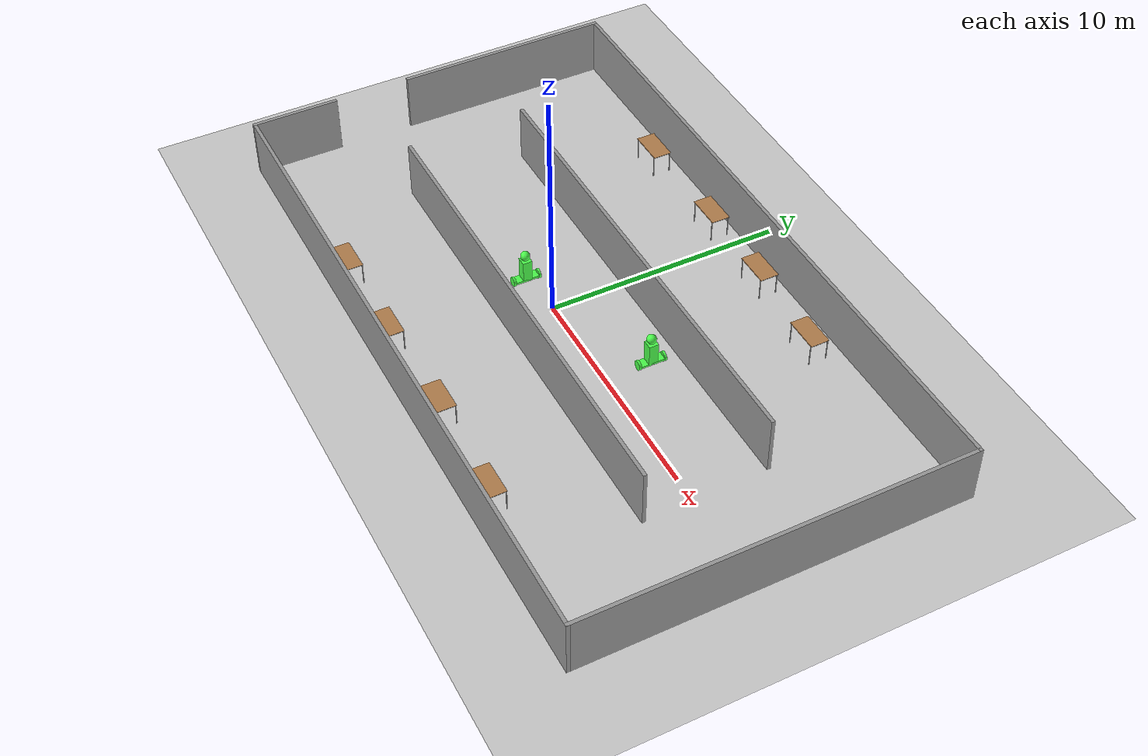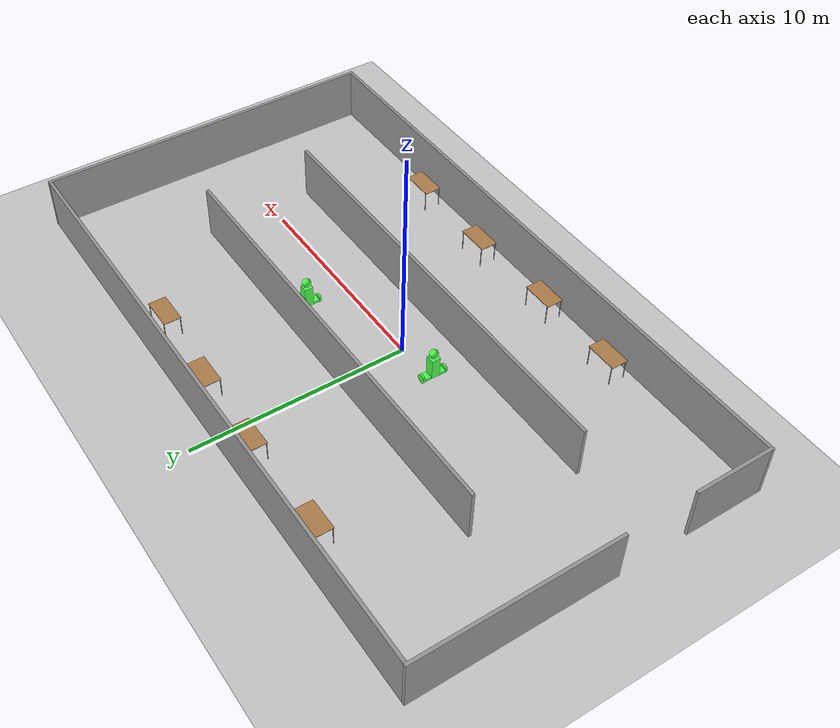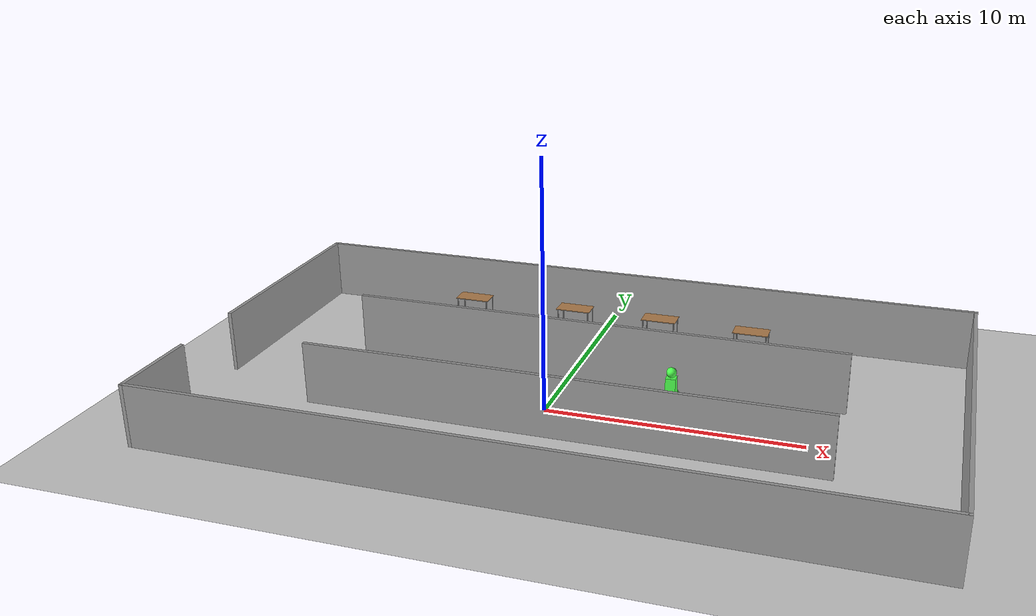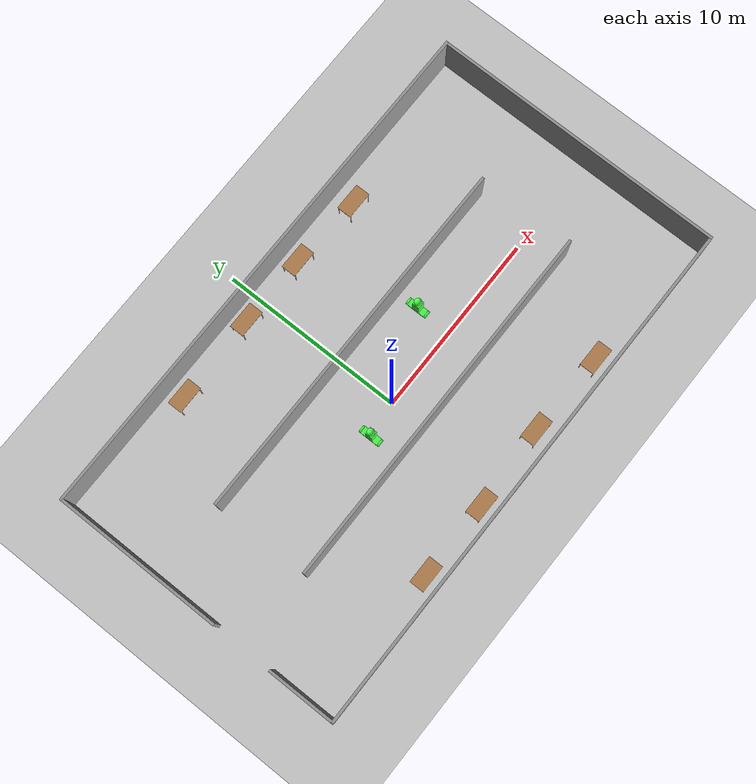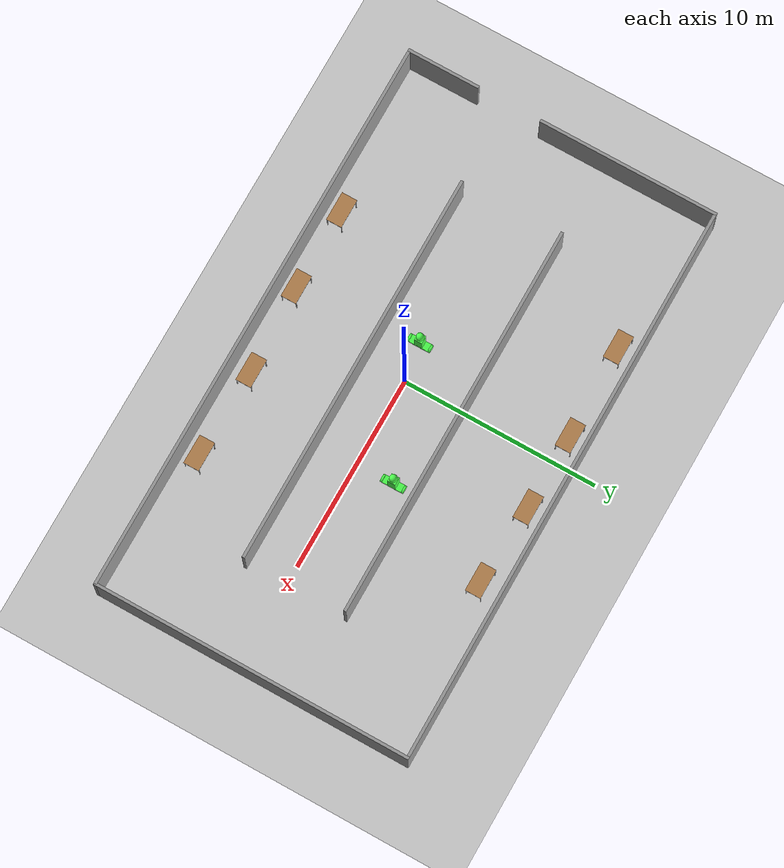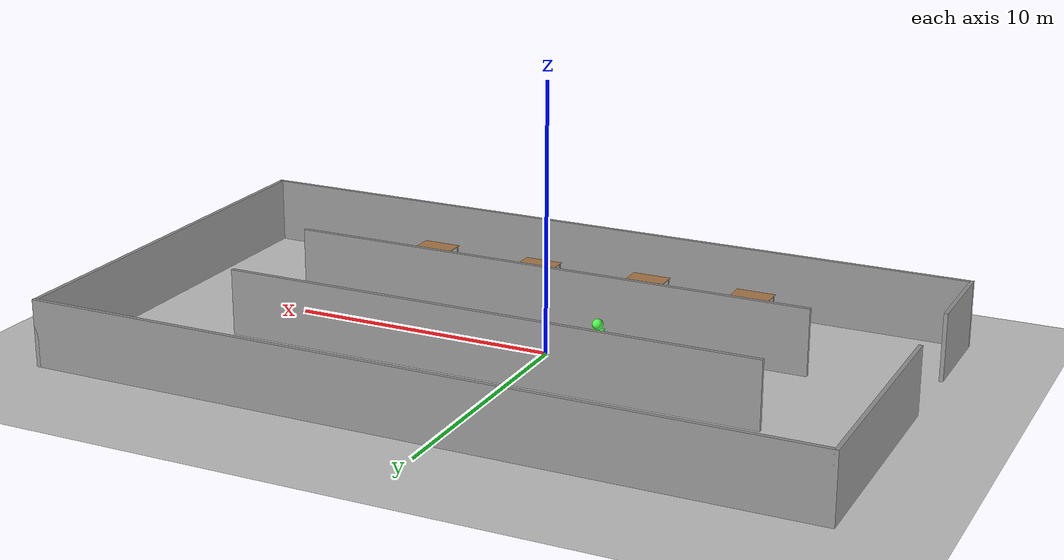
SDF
<sdf version="1.7">
 <world name="default">
  <light name="sun" type="directional">
   <pose>0 0 10 0 -0 0</pose>
   <diffuse>0.8 0.8 0.8 1</diffuse>
   <specular>0.2 0.2 0.2 1</specular>
   <attenuation>
    <range>1000</range>
    <constant>0.9</constant>
    <linear>0.01</linear>
    <quadratic>0.001</quadratic>
   </attenuation>
   <direction>-0.5 0.1 -0.9</direction>
   <spot><inner_angle>0</inner_angle><outer_angle>0</outer_angle><falloff>0</falloff></spot>
  </light>
  <model name="ground_plane">
   <static>1</static>
   <link name="link">
    <collision name="collision">
     <geometry><plane><normal>0 0 1</normal><size>100 100</size></plane></geometry>
     <surface>
      <contact><collide_bitmask>65535</collide_bitmask></contact>
      <friction><ode><mu>100</mu><mu2>50</mu2></ode></friction>
     </surface>
    </collision>
    <visual name="visual">
     <cast_shadows>0</cast_shadows>
     <geometry><plane><normal>0 0 1</normal><size>100 100</size></plane></geometry>
     <material>
      <script><uri>file://media/materials/scripts/gazebo.material</uri><name>Gazebo/Grey</name></script>
     </material>
    </visual>
   </link>
  </model>
  <gravity>0 0 -9.8</gravity>
  <magnetic_field>6e-06 2.3e-05 -4.2e-05</magnetic_field>
  <atmosphere type="adiabatic"/>
  <physics type="ode">
   <max_step_size>0.001</max_step_size>
   <real_time_factor>1</real_time_factor>
   <real_time_update_rate>1000</real_time_update_rate>
  </physics>
  <scene><ambient>0.4 0.4 0.4 1</ambient><background>0.7 0.7 0.7 1</background><shadows>1</shadows></scene>
  <spherical_coordinates>
   <surface_model>EARTH_WGS84</surface_model>
   <latitude_deg>0</latitude_deg>
   <longitude_deg>0</longitude_deg>
   <elevation>0</elevation>
   <heading_deg>0</heading_deg>
  </spherical_coordinates>
  <model name="office">
   <pose>1.065 0.81 0 0 -0 0</pose>
   <link name="Wall_11">
    <collision name="Wall_11_Collision">
     <geometry><box><size>20.25 0.15 2.5</size></box></geometry>
     <pose>0 0 1.25 0 -0 0</pose>
    </collision>
    <visual name="Wall_11_Visual">
     <pose>0 0 1.25 0 -0 0</pose>
     <geometry><box><size>20.25 0.15 2.5</size></box></geometry>
     <material>
      <script><uri>file://media/materials/scripts/gazebo.material</uri><name>Gazebo/Grey</name></script>
      <ambient>1 1 1 1</ambient>
     </material>
     <meta><layer>0</layer></meta>
    </visual>
    <pose>-0.095 2.35 0 0 -0 0</pose>
   </link>
   <link name="Wall_13">
    <collision name="Wall_13_Collision">
     <geometry><box><size>20.25 0.15 2.5</size></box></geometry>
     <pose>0 0 1.25 0 -0 0</pose>
    </collision>
    <visual name="Wall_13_Visual">
     <pose>0 0 1.25 0 -0 0</pose>
     <geometry><box><size>20.25 0.15 2.5</size></box></geometry>
     <material>
      <script><uri>file://media/materials/scripts/gazebo.material</uri><name>Gazebo/Grey</name></script>
      <ambient>1 1 1 1</ambient>
     </material>
     <meta><layer>0</layer></meta>
    </visual>
    <pose>0.005 -2.85 0 0 -0 0</pose>
   </link>
   <link name="Wall_2">
    <collision name="Wall_2_Collision">
     <geometry><box><size>9.25 0.15 2.5</size></box></geometry>
     <pose>0 0 1.25 0 -0 0</pose>
    </collision>
    <visual name="Wall_2_Visual">
     <pose>0 0 1.25 0 -0 0</pose>
     <geometry><box><size>9.25 0.15 2.5</size></box></geometry>
     <material>
      <script><uri>file://media/materials/scripts/gazebo.material</uri><name>Gazebo/Grey</name></script>
      <ambient>1 1 1 1</ambient>
     </material>
     <meta><layer>0</layer></meta>
    </visual>
    <pose>-14.425 3.5 0 0 -0 1.5708</pose>
   </link>
   <link name="Wall_3">
    <collision name="Wall_3_Collision">
     <geometry><box><size>29 0.15 2.5</size></box></geometry>
     <pose>0 0 1.25 0 -0 0</pose>
    </collision>
    <visual name="Wall_3_Visual">
     <pose>0 0 1.25 0 -0 0</pose>
     <geometry><box><size>29 0.15 2.5</size></box></geometry>
     <material>
      <script><uri>file://media/materials/scripts/gazebo.material</uri><name>Gazebo/Grey</name></script>
      <ambient>1 1 1 1</ambient>
     </material>
     <meta><layer>0</layer></meta>
    </visual>
    <pose>0 8.05 0 0 -0 0</pose>
   </link>
   <link name="Wall_4">
    <collision name="Wall_4_Collision">
     <geometry><box><size>16.25 0.15 2.5</size></box></geometry>
     <pose>0 0 1.25 0 -0 0</pose>
    </collision>
    <visual name="Wall_4_Visual">
     <pose>0 0 1.25 0 -0 0</pose>
     <geometry><box><size>16.25 0.15 2.5</size></box></geometry>
     <material>
      <script><uri>file://media/materials/scripts/gazebo.material</uri><name>Gazebo/Grey</name></script>
      <ambient>1 1 1 1</ambient>
     </material>
     <meta><layer>0</layer></meta>
    </visual>
    <pose>14.425 -0 0 0 -0 -1.5708</pose>
   </link>
   <link name="Wall_5">
    <collision name="Wall_5_Collision">
     <geometry><box><size>29 0.15 2.5</size></box></geometry>
     <pose>0 0 1.25 0 -0 0</pose>
    </collision>
    <visual name="Wall_5_Visual">
     <pose>0 0 1.25 0 -0 0</pose>
     <geometry><box><size>29 0.15 2.5</size></box></geometry>
     <material>
      <script><uri>file://media/materials/scripts/gazebo.material</uri><name>Gazebo/Grey</name></script>
      <ambient>1 1 1 1</ambient>
     </material>
     <meta><layer>0</layer></meta>
    </visual>
    <pose>0 -8.05 0 0 -0 3.14159</pose>
   </link>
   <link name="Wall_6">
    <collision name="Wall_6_Collision">
     <geometry><box><size>3.75 0.15 2.5</size></box></geometry>
     <pose>0 0 1.25 0 -0 0</pose>
    </collision>
    <visual name="Wall_6_Visual">
     <pose>0 0 1.25 0 -0 0</pose>
     <geometry><box><size>3.75 0.15 2.5</size></box></geometry>
     <material>
      <script><uri>file://media/materials/scripts/gazebo.material</uri><name>Gazebo/Grey</name></script>
      <ambient>1 1 1 1</ambient>
     </material>
     <meta><layer>0</layer></meta>
    </visual>
    <pose>-14.425 -6.25 0 0 -0 1.5708</pose>
   </link>
   <static>1</static>
  </model>
  <model name="table">
   <static>1</static>
   <link name="link">
    <collision name="surface">
     <pose>0 0 1 0 -0 0</pose>
     <geometry><box><size>1.5 0.8 0.03</size></box></geometry>
     <surface><friction><ode><mu>0.6</mu><mu2>0.6</mu2></ode></friction></surface>
    </collision>
    <visual name="visual1">
     <pose>0 0 1 0 -0 0</pose>
     <geometry><box><size>1.5 0.8 0.03</size></box></geometry>
     <material>
      <script><uri>file://media/materials/scripts/gazebo.material</uri><name>Gazebo/Wood</name></script>
     </material>
    </visual>
    <collision name="front_left_leg">
     <pose>0.68 0.38 0.5 0 -0 0</pose>
     <geometry><cylinder><radius>0.02</radius><length>1</length></cylinder></geometry>
    </collision>
    <visual name="front_left_leg">
     <pose>0.68 0.38 0.5 0 -0 0</pose>
     <geometry><cylinder><radius>0.02</radius><length>1</length></cylinder></geometry>
     <material>
      <script><uri>file://media/materials/scripts/gazebo.material</uri><name>Gazebo/Grey</name></script>
     </material>
    </visual>
    <collision name="front_right_leg">
     <pose>0.68 -0.38 0.5 0 -0 0</pose>
     <geometry><cylinder><radius>0.02</radius><length>1</length></cylinder></geometry>
    </collision>
    <visual name="front_right_leg">
     <pose>0.68 -0.38 0.5 0 -0 0</pose>
     <geometry><cylinder><radius>0.02</radius><length>1</length></cylinder></geometry>
     <material>
      <script><uri>file://media/materials/scripts/gazebo.material</uri><name>Gazebo/Grey</name></script>
     </material>
    </visual>
    <collision name="back_right_leg">
     <pose>-0.68 -0.38 0.5 0 -0 0</pose>
     <geometry><cylinder><radius>0.02</radius><length>1</length></cylinder></geometry>
    </collision>
    <visual name="back_right_leg">
     <pose>-0.68 -0.38 0.5 0 -0 0</pose>
     <geometry><cylinder><radius>0.02</radius><length>1</length></cylinder></geometry>
     <material>
      <script><uri>file://media/materials/scripts/gazebo.material</uri><name>Gazebo/Grey</name></script>
     </material>
    </visual>
    <collision name="back_left_leg">
     <pose>-0.68 0.38 0.5 0 -0 0</pose>
     <geometry><cylinder><radius>0.02</radius><length>1</length></cylinder></geometry>
    </collision>
    <visual name="back_left_leg">
     <pose>-0.68 0.38 0.5 0 -0 0</pose>
     <geometry><cylinder><radius>0.02</radius><length>1</length></cylinder></geometry>
     <material>
      <script><uri>file://media/materials/scripts/gazebo.material</uri><name>Gazebo/Grey</name></script>
     </material>
    </visual>
   </link>
   <pose>-5.48269 -6.41926 0 0 -0 0</pose>
  </model>
  <model name="table_0">
   <static>1</static>
   <link name="link">
    <collision name="surface">
     <pose>0 0 1 0 -0 0</pose>
     <geometry><box><size>1.5 0.8 0.03</size></box></geometry>
     <surface><friction><ode><mu>0.6</mu><mu2>0.6</mu2></ode></friction></surface>
    </collision>
    <visual name="visual1">
     <pose>0 0 1 0 -0 0</pose>
     <geometry><box><size>1.5 0.8 0.03</size></box></geometry>
     <material>
      <script><uri>file://media/materials/scripts/gazebo.material</uri><name>Gazebo/Wood</name></script>
     </material>
    </visual>
    <collision name="front_left_leg">
     <pose>0.68 0.38 0.5 0 -0 0</pose>
     <geometry><cylinder><radius>0.02</radius><length>1</length></cylinder></geometry>
    </collision>
    <visual name="front_left_leg">
     <pose>0.68 0.38 0.5 0 -0 0</pose>
     <geometry><cylinder><radius>0.02</radius><length>1</length></cylinder></geometry>
     <material>
      <script><uri>file://media/materials/scripts/gazebo.material</uri><name>Gazebo/Grey</name></script>
     </material>
    </visual>
    <collision name="front_right_leg">
     <pose>0.68 -0.38 0.5 0 -0 0</pose>
     <geometry><cylinder><radius>0.02</radius><length>1</length></cylinder></geometry>
    </collision>
    <visual name="front_right_leg">
     <pose>0.68 -0.38 0.5 0 -0 0</pose>
     <geometry><cylinder><radius>0.02</radius><length>1</length></cylinder></geometry>
     <material>
      <script><uri>file://media/materials/scripts/gazebo.material</uri><name>Gazebo/Grey</name></script>
     </material>
    </visual>
    <collision name="back_right_leg">
     <pose>-0.68 -0.38 0.5 0 -0 0</pose>
     <geometry><cylinder><radius>0.02</radius><length>1</length></cylinder></geometry>
    </collision>
    <visual name="back_right_leg">
     <pose>-0.68 -0.38 0.5 0 -0 0</pose>
     <geometry><cylinder><radius>0.02</radius><length>1</length></cylinder></geometry>
     <material>
      <script><uri>file://media/materials/scripts/gazebo.material</uri><name>Gazebo/Grey</name></script>
     </material>
    </visual>
    <collision name="back_left_leg">
     <pose>-0.68 0.38 0.5 0 -0 0</pose>
     <geometry><cylinder><radius>0.02</radius><length>1</length></cylinder></geometry>
    </collision>
    <visual name="back_left_leg">
     <pose>-0.68 0.38 0.5 0 -0 0</pose>
     <geometry><cylinder><radius>0.02</radius><length>1</length></cylinder></geometry>
     <material>
      <script><uri>file://media/materials/scripts/gazebo.material</uri><name>Gazebo/Grey</name></script>
     </material>
    </visual>
   </link>
   <pose>-1.28457 -6.44201 0 0 -0 0</pose>
  </model>
  <model name="table_1">
   <static>1</static>
   <link name="link">
    <collision name="surface">
     <pose>0 0 1 0 -0 0</pose>
     <geometry><box><size>1.5 0.8 0.03</size></box></geometry>
     <surface><friction><ode><mu>0.6</mu><mu2>0.6</mu2></ode></friction></surface>
    </collision>
    <visual name="visual1">
     <pose>0 0 1 0 -0 0</pose>
     <geometry><box><size>1.5 0.8 0.03</size></box></geometry>
     <material>
      <script><uri>file://media/materials/scripts/gazebo.material</uri><name>Gazebo/Wood</name></script>
     </material>
    </visual>
    <collision name="front_left_leg">
     <pose>0.68 0.38 0.5 0 -0 0</pose>
     <geometry><cylinder><radius>0.02</radius><length>1</length></cylinder></geometry>
    </collision>
    <visual name="front_left_leg">
     <pose>0.68 0.38 0.5 0 -0 0</pose>
     <geometry><cylinder><radius>0.02</radius><length>1</length></cylinder></geometry>
     <material>
      <script><uri>file://media/materials/scripts/gazebo.material</uri><name>Gazebo/Grey</name></script>
     </material>
    </visual>
    <collision name="front_right_leg">
     <pose>0.68 -0.38 0.5 0 -0 0</pose>
     <geometry><cylinder><radius>0.02</radius><length>1</length></cylinder></geometry>
    </collision>
    <visual name="front_right_leg">
     <pose>0.68 -0.38 0.5 0 -0 0</pose>
     <geometry><cylinder><radius>0.02</radius><length>1</length></cylinder></geometry>
     <material>
      <script><uri>file://media/materials/scripts/gazebo.material</uri><name>Gazebo/Grey</name></script>
     </material>
    </visual>
    <collision name="back_right_leg">
     <pose>-0.68 -0.38 0.5 0 -0 0</pose>
     <geometry><cylinder><radius>0.02</radius><length>1</length></cylinder></geometry>
    </collision>
    <visual name="back_right_leg">
     <pose>-0.68 -0.38 0.5 0 -0 0</pose>
     <geometry><cylinder><radius>0.02</radius><length>1</length></cylinder></geometry>
     <material>
      <script><uri>file://media/materials/scripts/gazebo.material</uri><name>Gazebo/Grey</name></script>
     </material>
    </visual>
    <collision name="back_left_leg">
     <pose>-0.68 0.38 0.5 0 -0 0</pose>
     <geometry><cylinder><radius>0.02</radius><length>1</length></cylinder></geometry>
    </collision>
    <visual name="back_left_leg">
     <pose>-0.68 0.38 0.5 0 -0 0</pose>
     <geometry><cylinder><radius>0.02</radius><length>1</length></cylinder></geometry>
     <material>
      <script><uri>file://media/materials/scripts/gazebo.material</uri><name>Gazebo/Grey</name></script>
     </material>
    </visual>
   </link>
   <pose>3.18281 -6.2799 0 0 -0 0</pose>
  </model>
  <model name="table_2">
   <static>1</static>
   <link name="link">
    <collision name="surface">
     <pose>0 0 1 0 -0 0</pose>
     <geometry><box><size>1.5 0.8 0.03</size></box></geometry>
     <surface><friction><ode><mu>0.6</mu><mu2>0.6</mu2></ode></friction></surface>
    </collision>
    <visual name="visual1">
     <pose>0 0 1 0 -0 0</pose>
     <geometry><box><size>1.5 0.8 0.03</size></box></geometry>
     <material>
      <script><uri>file://media/materials/scripts/gazebo.material</uri><name>Gazebo/Wood</name></script>
     </material>
    </visual>
    <collision name="front_left_leg">
     <pose>0.68 0.38 0.5 0 -0 0</pose>
     <geometry><cylinder><radius>0.02</radius><length>1</length></cylinder></geometry>
    </collision>
    <visual name="front_left_leg">
     <pose>0.68 0.38 0.5 0 -0 0</pose>
     <geometry><cylinder><radius>0.02</radius><length>1</length></cylinder></geometry>
     <material>
      <script><uri>file://media/materials/scripts/gazebo.material</uri><name>Gazebo/Grey</name></script>
     </material>
    </visual>
    <collision name="front_right_leg">
     <pose>0.68 -0.38 0.5 0 -0 0</pose>
     <geometry><cylinder><radius>0.02</radius><length>1</length></cylinder></geometry>
    </collision>
    <visual name="front_right_leg">
     <pose>0.68 -0.38 0.5 0 -0 0</pose>
     <geometry><cylinder><radius>0.02</radius><length>1</length></cylinder></geometry>
     <material>
      <script><uri>file://media/materials/scripts/gazebo.material</uri><name>Gazebo/Grey</name></script>
     </material>
    </visual>
    <collision name="back_right_leg">
     <pose>-0.68 -0.38 0.5 0 -0 0</pose>
     <geometry><cylinder><radius>0.02</radius><length>1</length></cylinder></geometry>
    </collision>
    <visual name="back_right_leg">
     <pose>-0.68 -0.38 0.5 0 -0 0</pose>
     <geometry><cylinder><radius>0.02</radius><length>1</length></cylinder></geometry>
     <material>
      <script><uri>file://media/materials/scripts/gazebo.material</uri><name>Gazebo/Grey</name></script>
     </material>
    </visual>
    <collision name="back_left_leg">
     <pose>-0.68 0.38 0.5 0 -0 0</pose>
     <geometry><cylinder><radius>0.02</radius><length>1</length></cylinder></geometry>
    </collision>
    <visual name="back_left_leg">
     <pose>-0.68 0.38 0.5 0 -0 0</pose>
     <geometry><cylinder><radius>0.02</radius><length>1</length></cylinder></geometry>
     <material>
      <script><uri>file://media/materials/scripts/gazebo.material</uri><name>Gazebo/Grey</name></script>
     </material>
    </visual>
   </link>
   <pose>7.73698 -6.40535 0 0 -0 0</pose>
  </model>
  <model name="table_3">
   <static>1</static>
   <link name="link">
    <collision name="surface">
     <pose>0 0 1 0 -0 0</pose>
     <geometry><box><size>1.5 0.8 0.03</size></box></geometry>
     <surface><friction><ode><mu>0.6</mu><mu2>0.6</mu2></ode></friction></surface>
    </collision>
    <visual name="visual1">
     <pose>0 0 1 0 -0 0</pose>
     <geometry><box><size>1.5 0.8 0.03</size></box></geometry>
     <material>
      <script><uri>file://media/materials/scripts/gazebo.material</uri><name>Gazebo/Wood</name></script>
     </material>
    </visual>
    <collision name="front_left_leg">
     <pose>0.68 0.38 0.5 0 -0 0</pose>
     <geometry><cylinder><radius>0.02</radius><length>1</length></cylinder></geometry>
    </collision>
    <visual name="front_left_leg">
     <pose>0.68 0.38 0.5 0 -0 0</pose>
     <geometry><cylinder><radius>0.02</radius><length>1</length></cylinder></geometry>
     <material>
      <script><uri>file://media/materials/scripts/gazebo.material</uri><name>Gazebo/Grey</name></script>
     </material>
    </visual>
    <collision name="front_right_leg">
     <pose>0.68 -0.38 0.5 0 -0 0</pose>
     <geometry><cylinder><radius>0.02</radius><length>1</length></cylinder></geometry>
    </collision>
    <visual name="front_right_leg">
     <pose>0.68 -0.38 0.5 0 -0 0</pose>
     <geometry><cylinder><radius>0.02</radius><length>1</length></cylinder></geometry>
     <material>
      <script><uri>file://media/materials/scripts/gazebo.material</uri><name>Gazebo/Grey</name></script>
     </material>
    </visual>
    <collision name="back_right_leg">
     <pose>-0.68 -0.38 0.5 0 -0 0</pose>
     <geometry><cylinder><radius>0.02</radius><length>1</length></cylinder></geometry>
    </collision>
    <visual name="back_right_leg">
     <pose>-0.68 -0.38 0.5 0 -0 0</pose>
     <geometry><cylinder><radius>0.02</radius><length>1</length></cylinder></geometry>
     <material>
      <script><uri>file://media/materials/scripts/gazebo.material</uri><name>Gazebo/Grey</name></script>
     </material>
    </visual>
    <collision name="back_left_leg">
     <pose>-0.68 0.38 0.5 0 -0 0</pose>
     <geometry><cylinder><radius>0.02</radius><length>1</length></cylinder></geometry>
    </collision>
    <visual name="back_left_leg">
     <pose>-0.68 0.38 0.5 0 -0 0</pose>
     <geometry><cylinder><radius>0.02</radius><length>1</length></cylinder></geometry>
     <material>
      <script><uri>file://media/materials/scripts/gazebo.material</uri><name>Gazebo/Grey</name></script>
     </material>
    </visual>
   </link>
   <pose>-6.01718 7.89006 0 0 -0 0</pose>
  </model>
  <model name="table_4">
   <static>1</static>
   <link name="link">
    <collision name="surface">
     <pose>0 0 1 0 -0 0</pose>
     <geometry><box><size>1.5 0.8 0.03</size></box></geometry>
     <surface><friction><ode><mu>0.6</mu><mu2>0.6</mu2></ode></friction></surface>
    </collision>
    <visual name="visual1">
     <pose>0 0 1 0 -0 0</pose>
     <geometry><box><size>1.5 0.8 0.03</size></box></geometry>
     <material>
      <script><uri>file://media/materials/scripts/gazebo.material</uri><name>Gazebo/Wood</name></script>
     </material>
    </visual>
    <collision name="front_left_leg">
     <pose>0.68 0.38 0.5 0 -0 0</pose>
     <geometry><cylinder><radius>0.02</radius><length>1</length></cylinder></geometry>
    </collision>
    <visual name="front_left_leg">
     <pose>0.68 0.38 0.5 0 -0 0</pose>
     <geometry><cylinder><radius>0.02</radius><length>1</length></cylinder></geometry>
     <material>
      <script><uri>file://media/materials/scripts/gazebo.material</uri><name>Gazebo/Grey</name></script>
     </material>
    </visual>
    <collision name="front_right_leg">
     <pose>0.68 -0.38 0.5 0 -0 0</pose>
     <geometry><cylinder><radius>0.02</radius><length>1</length></cylinder></geometry>
    </collision>
    <visual name="front_right_leg">
     <pose>0.68 -0.38 0.5 0 -0 0</pose>
     <geometry><cylinder><radius>0.02</radius><length>1</length></cylinder></geometry>
     <material>
      <script><uri>file://media/materials/scripts/gazebo.material</uri><name>Gazebo/Grey</name></script>
     </material>
    </visual>
    <collision name="back_right_leg">
     <pose>-0.68 -0.38 0.5 0 -0 0</pose>
     <geometry><cylinder><radius>0.02</radius><length>1</length></cylinder></geometry>
    </collision>
    <visual name="back_right_leg">
     <pose>-0.68 -0.38 0.5 0 -0 0</pose>
     <geometry><cylinder><radius>0.02</radius><length>1</length></cylinder></geometry>
     <material>
      <script><uri>file://media/materials/scripts/gazebo.material</uri><name>Gazebo/Grey</name></script>
     </material>
    </visual>
    <collision name="back_left_leg">
     <pose>-0.68 0.38 0.5 0 -0 0</pose>
     <geometry><cylinder><radius>0.02</radius><length>1</length></cylinder></geometry>
    </collision>
    <visual name="back_left_leg">
     <pose>-0.68 0.38 0.5 0 -0 0</pose>
     <geometry><cylinder><radius>0.02</radius><length>1</length></cylinder></geometry>
     <material>
      <script><uri>file://media/materials/scripts/gazebo.material</uri><name>Gazebo/Grey</name></script>
     </material>
    </visual>
   </link>
   <pose>-1.2871 7.96784 0 0 -0 0</pose>
  </model>
  <model name="table_5">
   <static>1</static>
   <link name="link">
    <collision name="surface">
     <pose>0 0 1 0 -0 0</pose>
     <geometry><box><size>1.5 0.8 0.03</size></box></geometry>
     <surface><friction><ode><mu>0.6</mu><mu2>0.6</mu2></ode></friction></surface>
    </collision>
    <visual name="visual1">
     <pose>0 0 1 0 -0 0</pose>
     <geometry><box><size>1.5 0.8 0.03</size></box></geometry>
     <material>
      <script><uri>file://media/materials/scripts/gazebo.material</uri><name>Gazebo/Wood</name></script>
     </material>
    </visual>
    <collision name="front_left_leg">
     <pose>0.68 0.38 0.5 0 -0 0</pose>
     <geometry><cylinder><radius>0.02</radius><length>1</length></cylinder></geometry>
    </collision>
    <visual name="front_left_leg">
     <pose>0.68 0.38 0.5 0 -0 0</pose>
     <geometry><cylinder><radius>0.02</radius><length>1</length></cylinder></geometry>
     <material>
      <script><uri>file://media/materials/scripts/gazebo.material</uri><name>Gazebo/Grey</name></script>
     </material>
    </visual>
    <collision name="front_right_leg">
     <pose>0.68 -0.38 0.5 0 -0 0</pose>
     <geometry><cylinder><radius>0.02</radius><length>1</length></cylinder></geometry>
    </collision>
    <visual name="front_right_leg">
     <pose>0.68 -0.38 0.5 0 -0 0</pose>
     <geometry><cylinder><radius>0.02</radius><length>1</length></cylinder></geometry>
     <material>
      <script><uri>file://media/materials/scripts/gazebo.material</uri><name>Gazebo/Grey</name></script>
     </material>
    </visual>
    <collision name="back_right_leg">
     <pose>-0.68 -0.38 0.5 0 -0 0</pose>
     <geometry><cylinder><radius>0.02</radius><length>1</length></cylinder></geometry>
    </collision>
    <visual name="back_right_leg">
     <pose>-0.68 -0.38 0.5 0 -0 0</pose>
     <geometry><cylinder><radius>0.02</radius><length>1</length></cylinder></geometry>
     <material>
      <script><uri>file://media/materials/scripts/gazebo.material</uri><name>Gazebo/Grey</name></script>
     </material>
    </visual>
    <collision name="back_left_leg">
     <pose>-0.68 0.38 0.5 0 -0 0</pose>
     <geometry><cylinder><radius>0.02</radius><length>1</length></cylinder></geometry>
    </collision>
    <visual name="back_left_leg">
     <pose>-0.68 0.38 0.5 0 -0 0</pose>
     <geometry><cylinder><radius>0.02</radius><length>1</length></cylinder></geometry>
     <material>
      <script><uri>file://media/materials/scripts/gazebo.material</uri><name>Gazebo/Grey</name></script>
     </material>
    </visual>
   </link>
   <pose>2.58747 7.91174 0 0 -0 0</pose>
  </model>
  <model name="table_6">
   <static>1</static>
   <link name="link">
    <collision name="surface">
     <pose>0 0 1 0 -0 0</pose>
     <geometry><box><size>1.5 0.8 0.03</size></box></geometry>
     <surface><friction><ode><mu>0.6</mu><mu2>0.6</mu2></ode></friction></surface>
    </collision>
    <visual name="visual1">
     <pose>0 0 1 0 -0 0</pose>
     <geometry><box><size>1.5 0.8 0.03</size></box></geometry>
     <material>
      <script><uri>file://media/materials/scripts/gazebo.material</uri><name>Gazebo/Wood</name></script>
     </material>
    </visual>
    <collision name="front_left_leg">
     <pose>0.68 0.38 0.5 0 -0 0</pose>
     <geometry><cylinder><radius>0.02</radius><length>1</length></cylinder></geometry>
    </collision>
    <visual name="front_left_leg">
     <pose>0.68 0.38 0.5 0 -0 0</pose>
     <geometry><cylinder><radius>0.02</radius><length>1</length></cylinder></geometry>
     <material>
      <script><uri>file://media/materials/scripts/gazebo.material</uri><name>Gazebo/Grey</name></script>
     </material>
    </visual>
    <collision name="front_right_leg">
     <pose>0.68 -0.38 0.5 0 -0 0</pose>
     <geometry><cylinder><radius>0.02</radius><length>1</length></cylinder></geometry>
    </collision>
    <visual name="front_right_leg">
     <pose>0.68 -0.38 0.5 0 -0 0</pose>
     <geometry><cylinder><radius>0.02</radius><length>1</length></cylinder></geometry>
     <material>
      <script><uri>file://media/materials/scripts/gazebo.material</uri><name>Gazebo/Grey</name></script>
     </material>
    </visual>
    <collision name="back_right_leg">
     <pose>-0.68 -0.38 0.5 0 -0 0</pose>
     <geometry><cylinder><radius>0.02</radius><length>1</length></cylinder></geometry>
    </collision>
    <visual name="back_right_leg">
     <pose>-0.68 -0.38 0.5 0 -0 0</pose>
     <geometry><cylinder><radius>0.02</radius><length>1</length></cylinder></geometry>
     <material>
      <script><uri>file://media/materials/scripts/gazebo.material</uri><name>Gazebo/Grey</name></script>
     </material>
    </visual>
    <collision name="back_left_leg">
     <pose>-0.68 0.38 0.5 0 -0 0</pose>
     <geometry><cylinder><radius>0.02</radius><length>1</length></cylinder></geometry>
    </collision>
    <visual name="back_left_leg">
     <pose>-0.68 0.38 0.5 0 -0 0</pose>
     <geometry><cylinder><radius>0.02</radius><length>1</length></cylinder></geometry>
     <material>
      <script><uri>file://media/materials/scripts/gazebo.material</uri><name>Gazebo/Grey</name></script>
     </material>
    </visual>
   </link>
   <pose>6.61062 7.67624 0 0 -0 0</pose>
  </model>
  <model name="HumanoidRobot">
   <link name="link_0">
    <inertial>
     <mass>1</mass>
     <inertia>
      <ixx>0.166667</ixx>
      <ixy>0</ixy>
      <ixz>0</ixz>
      <iyy>0.166667</iyy>
      <iyz>0</iyz>
      <izz>0.166667</izz>
     </inertia>
    </inertial>
    <pose>0 0 0.2 0 -0 0</pose>
    <visual name="visual">
     <geometry><box><size>0.4 1 0.1</size></box></geometry>
     <material>
      <lighting>1</lighting>
      <script><uri>file://media/materials/scripts/gazebo.material</uri><name>Gazebo/Grey</name></script>
      <shader type="pixel"><normal_map>__default__</normal_map></shader>
      <ambient>0.3 1 0.3 1</ambient>
      <diffuse>0.7 0.7 0.7 1</diffuse>
      <specular>0.01 0.01 0.01 1</specular>
      <emissive>0 0 0 1</emissive>
     </material>
    </visual>
    <collision name="collision">
     <geometry><box><size>0.4 1 0.1</size></box></geometry>
     <surface>
      <friction>
       <ode><mu>1</mu><mu2>1</mu2><fdir1>0 0 0</fdir1><slip1>0</slip1><slip2>0</slip2></ode>
       <torsional>
        <coefficient>1</coefficient>
        <patch_radius>0</patch_radius>
        <surface_radius>0</surface_radius>
        <use_patch_radius>1</use_patch_radius>
        <ode><slip>0</slip></ode>
       </torsional>
      </friction>
      <bounce><restitution_coefficient>0</restitution_coefficient><threshold>1e+06</threshold></bounce>
      <contact>
       <collide_without_contact>0</collide_without_contact>
       <collide_without_contact_bitmask>1</collide_without_contact_bitmask>
       <collide_bitmask>1</collide_bitmask>
       <ode>
        <soft_cfm>0</soft_cfm>
        <soft_erp>0.2</soft_erp>
        <kp>1e+13</kp>
        <kd>1</kd>
        <max_vel>0.01</max_vel>
        <min_depth>0</min_depth>
       </ode>
       <bullet>
        <split_impulse>1</split_impulse>
        <split_impulse_penetration_threshold>-0.01</split_impulse_penetration_threshold>
        <soft_cfm>0</soft_cfm>
        <soft_erp>0.2</soft_erp>
        <kp>1e+13</kp>
        <kd>1</kd>
       </bullet>
      </contact>
     </surface>
    </collision>
   </link>
   <link name="link_1">
    <inertial>
     <mass>1</mass>
     <inertia><ixx>0.145833</ixx><ixy>0</ixy><ixz>0</ixz><iyy>0.145833</iyy><iyz>0</iyz><izz>0.125</izz></inertia>
    </inertial>
    <pose>0 -0.550019 0.2 1.5707 -0 0</pose>
    <visual name="visual">
     <geometry><cylinder><radius>0.2</radius><length>0.1</length></cylinder></geometry>
     <material>
      <lighting>1</lighting>
      <script><uri>file://media/materials/scripts/gazebo.material</uri><name>Gazebo/Grey</name></script>
      <shader type="pixel"><normal_map>__default__</normal_map></shader>
      <ambient>0.3 1 0.3 1</ambient>
      <diffuse>0.7 0.7 0.7 1</diffuse>
      <specular>0.01 0.01 0.01 1</specular>
      <emissive>0 0 0 1</emissive>
     </material>
    </visual>
    <collision name="collision">
     <geometry><cylinder><radius>0.2</radius><length>0.1</length></cylinder></geometry>
     <surface>
      <friction>
       <ode><mu>1</mu><mu2>1</mu2><fdir1>0 0 0</fdir1><slip1>0</slip1><slip2>0</slip2></ode>
       <torsional>
        <coefficient>1</coefficient>
        <patch_radius>0</patch_radius>
        <surface_radius>0</surface_radius>
        <use_patch_radius>1</use_patch_radius>
        <ode><slip>0</slip></ode>
       </torsional>
      </friction>
      <bounce><restitution_coefficient>0</restitution_coefficient><threshold>1e+06</threshold></bounce>
      <contact>
       <collide_without_contact>0</collide_without_contact>
       <collide_without_contact_bitmask>1</collide_without_contact_bitmask>
       <collide_bitmask>1</collide_bitmask>
       <ode>
        <soft_cfm>0</soft_cfm>
        <soft_erp>0.2</soft_erp>
        <kp>1e+13</kp>
        <kd>1</kd>
        <max_vel>0.01</max_vel>
        <min_depth>0</min_depth>
       </ode>
       <bullet>
        <split_impulse>1</split_impulse>
        <split_impulse_penetration_threshold>-0.01</split_impulse_penetration_threshold>
        <soft_cfm>0</soft_cfm>
        <soft_erp>0.2</soft_erp>
        <kp>1e+13</kp>
        <kd>1</kd>
       </bullet>
      </contact>
     </surface>
    </collision>
   </link>
   <link name="link_1_clone">
    <inertial>
     <mass>1</mass>
     <inertia><ixx>0.145833</ixx><ixy>0</ixy><ixz>0</ixz><iyy>0.145833</iyy><iyz>0</iyz><izz>0.125</izz></inertia>
    </inertial>
    <pose>0 0.550019 0.2 1.5707 -0 0</pose>
    <visual name="visual">
     <geometry><cylinder><radius>0.2</radius><length>0.1</length></cylinder></geometry>
     <material>
      <lighting>1</lighting>
      <script><uri>file://media/materials/scripts/gazebo.material</uri><name>Gazebo/Grey</name></script>
      <shader type="pixel"><normal_map>__default__</normal_map></shader>
      <ambient>0.3 1 0.3 1</ambient>
      <diffuse>0.7 0.7 0.7 1</diffuse>
      <specular>0.01 0.01 0.01 1</specular>
      <emissive>0 0 0 1</emissive>
     </material>
    </visual>
    <collision name="collision">
     <geometry><cylinder><radius>0.2</radius><length>0.1</length></cylinder></geometry>
     <surface>
      <friction>
       <ode><mu>1</mu><mu2>1</mu2><fdir1>0 0 0</fdir1><slip1>0</slip1><slip2>0</slip2></ode>
       <torsional>
        <coefficient>1</coefficient>
        <patch_radius>0</patch_radius>
        <surface_radius>0</surface_radius>
        <use_patch_radius>1</use_patch_radius>
        <ode><slip>0</slip></ode>
       </torsional>
      </friction>
      <bounce><restitution_coefficient>0</restitution_coefficient><threshold>1e+06</threshold></bounce>
      <contact>
       <collide_without_contact>0</collide_without_contact>
       <collide_without_contact_bitmask>1</collide_without_contact_bitmask>
       <collide_bitmask>1</collide_bitmask>
       <ode>
        <soft_cfm>0</soft_cfm>
        <soft_erp>0.2</soft_erp>
        <kp>1e+13</kp>
        <kd>1</kd>
        <max_vel>0.01</max_vel>
        <min_depth>0</min_depth>
       </ode>
       <bullet>
        <split_impulse>1</split_impulse>
        <split_impulse_penetration_threshold>-0.01</split_impulse_penetration_threshold>
        <soft_cfm>0</soft_cfm>
        <soft_erp>0.2</soft_erp>
        <kp>1e+13</kp>
        <kd>1</kd>
       </bullet>
      </contact>
     </surface>
    </collision>
   </link>
   <link name="link_2">
    <inertial>
     <mass>1</mass>
     <inertia>
      <ixx>0.166667</ixx>
      <ixy>0</ixy>
      <ixz>0</ixz>
      <iyy>0.166667</iyy>
      <iyz>0</iyz>
      <izz>0.166667</izz>
     </inertia>
    </inertial>
    <pose>0 0 0.65 0 -0 0</pose>
    <visual name="visual">
     <geometry><box><size>0.4 0.4 1</size></box></geometry>
     <material>
      <lighting>1</lighting>
      <script><uri>file://media/materials/scripts/gazebo.material</uri><name>Gazebo/Grey</name></script>
      <shader type="pixel"><normal_map>__default__</normal_map></shader>
      <ambient>0.3 1 0.3 1</ambient>
      <diffuse>0.7 0.7 0.7 1</diffuse>
      <specular>0.01 0.01 0.01 1</specular>
      <emissive>0 0 0 1</emissive>
     </material>
    </visual>
    <collision name="collision">
     <geometry><box><size>0.4 0.4 1</size></box></geometry>
     <surface>
      <friction>
       <ode><mu>1</mu><mu2>1</mu2><fdir1>0 0 0</fdir1><slip1>0</slip1><slip2>0</slip2></ode>
       <torsional>
        <coefficient>1</coefficient>
        <patch_radius>0</patch_radius>
        <surface_radius>0</surface_radius>
        <use_patch_radius>1</use_patch_radius>
        <ode><slip>0</slip></ode>
       </torsional>
      </friction>
      <bounce><restitution_coefficient>0</restitution_coefficient><threshold>1e+06</threshold></bounce>
      <contact>
       <collide_without_contact>0</collide_without_contact>
       <collide_without_contact_bitmask>1</collide_without_contact_bitmask>
       <collide_bitmask>1</collide_bitmask>
       <ode>
        <soft_cfm>0</soft_cfm>
        <soft_erp>0.2</soft_erp>
        <kp>1e+13</kp>
        <kd>1</kd>
        <max_vel>0.01</max_vel>
        <min_depth>0</min_depth>
       </ode>
       <bullet>
        <split_impulse>1</split_impulse>
        <split_impulse_penetration_threshold>-0.01</split_impulse_penetration_threshold>
        <soft_cfm>0</soft_cfm>
        <soft_erp>0.2</soft_erp>
        <kp>1e+13</kp>
        <kd>1</kd>
       </bullet>
      </contact>
     </surface>
    </collision>
   </link>
   <link name="link_3">
    <inertial>
     <mass>1</mass>
     <inertia><ixx>0.1</ixx><ixy>0</ixy><ixz>0</ixz><iyy>0.1</iyy><iyz>0</iyz><izz>0.1</izz></inertia>
    </inertial>
    <pose>0 0 1.35 0 -0 0</pose>
    <visual name="visual">
     <geometry><sphere><radius>0.2</radius></sphere></geometry>
     <material>
      <lighting>1</lighting>
      <script><uri>file://media/materials/scripts/gazebo.material</uri><name>Gazebo/Grey</name></script>
      <shader type="pixel"><normal_map>__default__</normal_map></shader>
      <ambient>0.3 1 0.3 1</ambient>
      <diffuse>0.7 0.7 0.7 1</diffuse>
      <specular>0.01 0.01 0.01 1</specular>
      <emissive>0 0 0 1</emissive>
     </material>
    </visual>
    <collision name="collision">
     <geometry><sphere><radius>0.2</radius></sphere></geometry>
     <surface>
      <friction>
       <ode><mu>1</mu><mu2>1</mu2><fdir1>0 0 0</fdir1><slip1>0</slip1><slip2>0</slip2></ode>
       <torsional>
        <coefficient>1</coefficient>
        <patch_radius>0</patch_radius>
        <surface_radius>0</surface_radius>
        <use_patch_radius>1</use_patch_radius>
        <ode><slip>0</slip></ode>
       </torsional>
      </friction>
      <bounce><restitution_coefficient>0</restitution_coefficient><threshold>1e+06</threshold></bounce>
      <contact>
       <collide_without_contact>0</collide_without_contact>
       <collide_without_contact_bitmask>1</collide_without_contact_bitmask>
       <collide_bitmask>1</collide_bitmask>
       <ode>
        <soft_cfm>0</soft_cfm>
        <soft_erp>0.2</soft_erp>
        <kp>1e+13</kp>
        <kd>1</kd>
        <max_vel>0.01</max_vel>
        <min_depth>0</min_depth>
       </ode>
       <bullet>
        <split_impulse>1</split_impulse>
        <split_impulse_penetration_threshold>-0.01</split_impulse_penetration_threshold>
        <soft_cfm>0</soft_cfm>
        <soft_erp>0.2</soft_erp>
        <kp>1e+13</kp>
        <kd>1</kd>
       </bullet>
      </contact>
     </surface>
    </collision>
   </link>
   <joint name="link_0_JOINT_1" type="revolute">
    <parent>link_0</parent>
    <child>link_1</child>
    <axis>
     <xyz>0 0 1</xyz>
     <limit>
      <lower>-1.79769e+308</lower>
      <upper>1.79769e+308</upper>
      <effort>-1</effort>
      <velocity>-1</velocity>
     </limit>
     <dynamics>
      <spring_reference>0</spring_reference>
      <spring_stiffness>0</spring_stiffness>
      <damping>0</damping>
     </dynamics>
    </axis>
    <physics>
     <ode><limit><cfm>0</cfm><erp>0.2</erp></limit><suspension><cfm>0</cfm><erp>0.2</erp></suspension></ode>
    </physics>
   </joint>
   <joint name="link_0_JOINT_2" type="revolute">
    <parent>link_0</parent>
    <child>link_1_clone</child>
    <axis>
     <xyz>0 0 1</xyz>
     <limit>
      <lower>-1.79769e+308</lower>
      <upper>1.79769e+308</upper>
      <effort>-1</effort>
      <velocity>-1</velocity>
     </limit>
     <dynamics>
      <spring_reference>0</spring_reference>
      <spring_stiffness>0</spring_stiffness>
      <damping>0</damping>
     </dynamics>
    </axis>
    <physics>
     <ode><limit><cfm>0</cfm><erp>0.2</erp></limit><suspension><cfm>0</cfm><erp>0.2</erp></suspension></ode>
    </physics>
   </joint>
   <joint name="link_0_JOINT_3" type="fixed">
    <parent>link_0</parent>
    <child>link_2</child>
    <physics>
     <ode><limit><cfm>0</cfm><erp>0.2</erp></limit><suspension><cfm>0</cfm><erp>0.2</erp></suspension></ode>
    </physics>
   </joint>
   <joint name="link_2_JOINT_6" type="ball">
    <parent>link_2</parent>
    <child>link_3</child>
    <physics>
     <ode><limit><cfm>0</cfm><erp>0.2</erp></limit><suspension><cfm>0</cfm><erp>0.2</erp></suspension></ode>
    </physics>
   </joint>
   <static>0</static>
   <pose>-1.89295 -0.237073 3e-06 3e-06 -0 0</pose>
  </model>
  <model name="HumanoidRobot_0">
   <link name="link_0">
    <inertial>
     <mass>1</mass>
     <inertia>
      <ixx>0.166667</ixx>
      <ixy>0</ixy>
      <ixz>0</ixz>
      <iyy>0.166667</iyy>
      <iyz>0</iyz>
      <izz>0.166667</izz>
     </inertia>
    </inertial>
    <pose>0 0 0.2 0 -0 0</pose>
    <visual name="visual">
     <geometry><box><size>0.4 1 0.1</size></box></geometry>
     <material>
      <lighting>1</lighting>
      <script><uri>file://media/materials/scripts/gazebo.material</uri><name>Gazebo/Grey</name></script>
      <shader type="pixel"><normal_map>__default__</normal_map></shader>
      <ambient>0.3 1 0.3 1</ambient>
      <diffuse>0.7 0.7 0.7 1</diffuse>
      <specular>0.01 0.01 0.01 1</specular>
      <emissive>0 0 0 1</emissive>
     </material>
    </visual>
    <collision name="collision">
     <geometry><box><size>0.4 1 0.1</size></box></geometry>
     <surface>
      <friction>
       <ode><mu>1</mu><mu2>1</mu2><fdir1>0 0 0</fdir1><slip1>0</slip1><slip2>0</slip2></ode>
       <torsional>
        <coefficient>1</coefficient>
        <patch_radius>0</patch_radius>
        <surface_radius>0</surface_radius>
        <use_patch_radius>1</use_patch_radius>
        <ode><slip>0</slip></ode>
       </torsional>
      </friction>
      <bounce><restitution_coefficient>0</restitution_coefficient><threshold>1e+06</threshold></bounce>
      <contact>
       <collide_without_contact>0</collide_without_contact>
       <collide_without_contact_bitmask>1</collide_without_contact_bitmask>
       <collide_bitmask>1</collide_bitmask>
       <ode>
        <soft_cfm>0</soft_cfm>
        <soft_erp>0.2</soft_erp>
        <kp>1e+13</kp>
        <kd>1</kd>
        <max_vel>0.01</max_vel>
        <min_depth>0</min_depth>
       </ode>
       <bullet>
        <split_impulse>1</split_impulse>
        <split_impulse_penetration_threshold>-0.01</split_impulse_penetration_threshold>
        <soft_cfm>0</soft_cfm>
        <soft_erp>0.2</soft_erp>
        <kp>1e+13</kp>
        <kd>1</kd>
       </bullet>
      </contact>
     </surface>
    </collision>
   </link>
   <link name="link_1">
    <inertial>
     <mass>1</mass>
     <inertia><ixx>0.145833</ixx><ixy>0</ixy><ixz>0</ixz><iyy>0.145833</iyy><iyz>0</iyz><izz>0.125</izz></inertia>
    </inertial>
    <pose>0 -0.550019 0.2 1.5707 -0 0</pose>
    <visual name="visual">
     <geometry><cylinder><radius>0.2</radius><length>0.1</length></cylinder></geometry>
     <material>
      <lighting>1</lighting>
      <script><uri>file://media/materials/scripts/gazebo.material</uri><name>Gazebo/Grey</name></script>
      <shader type="pixel"><normal_map>__default__</normal_map></shader>
      <ambient>0.3 1 0.3 1</ambient>
      <diffuse>0.7 0.7 0.7 1</diffuse>
      <specular>0.01 0.01 0.01 1</specular>
      <emissive>0 0 0 1</emissive>
     </material>
    </visual>
    <collision name="collision">
     <geometry><cylinder><radius>0.2</radius><length>0.1</length></cylinder></geometry>
     <surface>
      <friction>
       <ode><mu>1</mu><mu2>1</mu2><fdir1>0 0 0</fdir1><slip1>0</slip1><slip2>0</slip2></ode>
       <torsional>
        <coefficient>1</coefficient>
        <patch_radius>0</patch_radius>
        <surface_radius>0</surface_radius>
        <use_patch_radius>1</use_patch_radius>
        <ode><slip>0</slip></ode>
       </torsional>
      </friction>
      <bounce><restitution_coefficient>0</restitution_coefficient><threshold>1e+06</threshold></bounce>
      <contact>
       <collide_without_contact>0</collide_without_contact>
       <collide_without_contact_bitmask>1</collide_without_contact_bitmask>
       <collide_bitmask>1</collide_bitmask>
       <ode>
        <soft_cfm>0</soft_cfm>
        <soft_erp>0.2</soft_erp>
        <kp>1e+13</kp>
        <kd>1</kd>
        <max_vel>0.01</max_vel>
        <min_depth>0</min_depth>
       </ode>
       <bullet>
        <split_impulse>1</split_impulse>
        <split_impulse_penetration_threshold>-0.01</split_impulse_penetration_threshold>
        <soft_cfm>0</soft_cfm>
        <soft_erp>0.2</soft_erp>
        <kp>1e+13</kp>
        <kd>1</kd>
       </bullet>
      </contact>
     </surface>
    </collision>
   </link>
   <link name="link_1_clone">
    <inertial>
     <mass>1</mass>
     <inertia><ixx>0.145833</ixx><ixy>0</ixy><ixz>0</ixz><iyy>0.145833</iyy><iyz>0</iyz><izz>0.125</izz></inertia>
    </inertial>
    <pose>0 0.550019 0.2 1.5707 -0 0</pose>
    <visual name="visual">
     <geometry><cylinder><radius>0.2</radius><length>0.1</length></cylinder></geometry>
     <material>
      <lighting>1</lighting>
      <script><uri>file://media/materials/scripts/gazebo.material</uri><name>Gazebo/Grey</name></script>
      <shader type="pixel"><normal_map>__default__</normal_map></shader>
      <ambient>0.3 1 0.3 1</ambient>
      <diffuse>0.7 0.7 0.7 1</diffuse>
      <specular>0.01 0.01 0.01 1</specular>
      <emissive>0 0 0 1</emissive>
     </material>
    </visual>
    <collision name="collision">
     <geometry><cylinder><radius>0.2</radius><length>0.1</length></cylinder></geometry>
     <surface>
      <friction>
       <ode><mu>1</mu><mu2>1</mu2><fdir1>0 0 0</fdir1><slip1>0</slip1><slip2>0</slip2></ode>
       <torsional>
        <coefficient>1</coefficient>
        <patch_radius>0</patch_radius>
        <surface_radius>0</surface_radius>
        <use_patch_radius>1</use_patch_radius>
        <ode><slip>0</slip></ode>
       </torsional>
      </friction>
      <bounce><restitution_coefficient>0</restitution_coefficient><threshold>1e+06</threshold></bounce>
      <contact>
       <collide_without_contact>0</collide_without_contact>
       <collide_without_contact_bitmask>1</collide_without_contact_bitmask>
       <collide_bitmask>1</collide_bitmask>
       <ode>
        <soft_cfm>0</soft_cfm>
        <soft_erp>0.2</soft_erp>
        <kp>1e+13</kp>
        <kd>1</kd>
        <max_vel>0.01</max_vel>
        <min_depth>0</min_depth>
       </ode>
       <bullet>
        <split_impulse>1</split_impulse>
        <split_impulse_penetration_threshold>-0.01</split_impulse_penetration_threshold>
        <soft_cfm>0</soft_cfm>
        <soft_erp>0.2</soft_erp>
        <kp>1e+13</kp>
        <kd>1</kd>
       </bullet>
      </contact>
     </surface>
    </collision>
   </link>
   <link name="link_2">
    <inertial>
     <mass>1</mass>
     <inertia>
      <ixx>0.166667</ixx>
      <ixy>0</ixy>
      <ixz>0</ixz>
      <iyy>0.166667</iyy>
      <iyz>0</iyz>
      <izz>0.166667</izz>
     </inertia>
    </inertial>
    <pose>0 0 0.65 0 -0 0</pose>
    <visual name="visual">
     <geometry><box><size>0.4 0.4 1</size></box></geometry>
     <material>
      <lighting>1</lighting>
      <script><uri>file://media/materials/scripts/gazebo.material</uri><name>Gazebo/Grey</name></script>
      <shader type="pixel"><normal_map>__default__</normal_map></shader>
      <ambient>0.3 1 0.3 1</ambient>
      <diffuse>0.7 0.7 0.7 1</diffuse>
      <specular>0.01 0.01 0.01 1</specular>
      <emissive>0 0 0 1</emissive>
     </material>
    </visual>
    <collision name="collision">
     <geometry><box><size>0.4 0.4 1</size></box></geometry>
     <surface>
      <friction>
       <ode><mu>1</mu><mu2>1</mu2><fdir1>0 0 0</fdir1><slip1>0</slip1><slip2>0</slip2></ode>
       <torsional>
        <coefficient>1</coefficient>
        <patch_radius>0</patch_radius>
        <surface_radius>0</surface_radius>
        <use_patch_radius>1</use_patch_radius>
        <ode><slip>0</slip></ode>
       </torsional>
      </friction>
      <bounce><restitution_coefficient>0</restitution_coefficient><threshold>1e+06</threshold></bounce>
      <contact>
       <collide_without_contact>0</collide_without_contact>
       <collide_without_contact_bitmask>1</collide_without_contact_bitmask>
       <collide_bitmask>1</collide_bitmask>
       <ode>
        <soft_cfm>0</soft_cfm>
        <soft_erp>0.2</soft_erp>
        <kp>1e+13</kp>
        <kd>1</kd>
        <max_vel>0.01</max_vel>
        <min_depth>0</min_depth>
       </ode>
       <bullet>
        <split_impulse>1</split_impulse>
        <split_impulse_penetration_threshold>-0.01</split_impulse_penetration_threshold>
        <soft_cfm>0</soft_cfm>
        <soft_erp>0.2</soft_erp>
        <kp>1e+13</kp>
        <kd>1</kd>
       </bullet>
      </contact>
     </surface>
    </collision>
   </link>
   <link name="link_3">
    <inertial>
     <mass>1</mass>
     <inertia><ixx>0.1</ixx><ixy>0</ixy><ixz>0</ixz><iyy>0.1</iyy><iyz>0</iyz><izz>0.1</izz></inertia>
    </inertial>
    <pose>0 0 1.35 0 -0 0</pose>
    <visual name="visual">
     <geometry><sphere><radius>0.2</radius></sphere></geometry>
     <material>
      <lighting>1</lighting>
      <script><uri>file://media/materials/scripts/gazebo.material</uri><name>Gazebo/Grey</name></script>
      <shader type="pixel"><normal_map>__default__</normal_map></shader>
      <ambient>0.3 1 0.3 1</ambient>
      <diffuse>0.7 0.7 0.7 1</diffuse>
      <specular>0.01 0.01 0.01 1</specular>
      <emissive>0 0 0 1</emissive>
     </material>
    </visual>
    <collision name="collision">
     <geometry><sphere><radius>0.2</radius></sphere></geometry>
     <surface>
      <friction>
       <ode><mu>1</mu><mu2>1</mu2><fdir1>0 0 0</fdir1><slip1>0</slip1><slip2>0</slip2></ode>
       <torsional>
        <coefficient>1</coefficient>
        <patch_radius>0</patch_radius>
        <surface_radius>0</surface_radius>
        <use_patch_radius>1</use_patch_radius>
        <ode><slip>0</slip></ode>
       </torsional>
      </friction>
      <bounce><restitution_coefficient>0</restitution_coefficient><threshold>1e+06</threshold></bounce>
      <contact>
       <collide_without_contact>0</collide_without_contact>
       <collide_without_contact_bitmask>1</collide_without_contact_bitmask>
       <collide_bitmask>1</collide_bitmask>
       <ode>
        <soft_cfm>0</soft_cfm>
        <soft_erp>0.2</soft_erp>
        <kp>1e+13</kp>
        <kd>1</kd>
        <max_vel>0.01</max_vel>
        <min_depth>0</min_depth>
       </ode>
       <bullet>
        <split_impulse>1</split_impulse>
        <split_impulse_penetration_threshold>-0.01</split_impulse_penetration_threshold>
        <soft_cfm>0</soft_cfm>
        <soft_erp>0.2</soft_erp>
        <kp>1e+13</kp>
        <kd>1</kd>
       </bullet>
      </contact>
     </surface>
    </collision>
   </link>
   <joint name="link_0_JOINT_1" type="revolute">
    <parent>link_0</parent>
    <child>link_1</child>
    <axis>
     <xyz>0 0 1</xyz>
     <limit>
      <lower>-1.79769e+308</lower>
      <upper>1.79769e+308</upper>
      <effort>-1</effort>
      <velocity>-1</velocity>
     </limit>
     <dynamics>
      <spring_reference>0</spring_reference>
      <spring_stiffness>0</spring_stiffness>
      <damping>0</damping>
     </dynamics>
    </axis>
    <physics>
     <ode><limit><cfm>0</cfm><erp>0.2</erp></limit><suspension><cfm>0</cfm><erp>0.2</erp></suspension></ode>
    </physics>
   </joint>
   <joint name="link_0_JOINT_2" type="revolute">
    <parent>link_0</parent>
    <child>link_1_clone</child>
    <axis>
     <xyz>0 0 1</xyz>
     <limit>
      <lower>-1.79769e+308</lower>
      <upper>1.79769e+308</upper>
      <effort>-1</effort>
      <velocity>-1</velocity>
     </limit>
     <dynamics>
      <spring_reference>0</spring_reference>
      <spring_stiffness>0</spring_stiffness>
      <damping>0</damping>
     </dynamics>
    </axis>
    <physics>
     <ode><limit><cfm>0</cfm><erp>0.2</erp></limit><suspension><cfm>0</cfm><erp>0.2</erp></suspension></ode>
    </physics>
   </joint>
   <joint name="link_0_JOINT_3" type="fixed">
    <parent>link_0</parent>
    <child>link_2</child>
    <physics>
     <ode><limit><cfm>0</cfm><erp>0.2</erp></limit><suspension><cfm>0</cfm><erp>0.2</erp></suspension></ode>
    </physics>
   </joint>
   <joint name="link_2_JOINT_6" type="ball">
    <parent>link_2</parent>
    <child>link_3</child>
    <physics>
     <ode><limit><cfm>0</cfm><erp>0.2</erp></limit><suspension><cfm>0</cfm><erp>0.2</erp></suspension></ode>
    </physics>
   </joint>
   <static>0</static>
   <pose>4.49888 1.94728 5e-06 0 -0 0</pose>
  </model>
  <model name="my_ball">
   <link name="link_0">
    <inertial>
     <mass>1</mass>
     <inertia><ixx>0.1</ixx><ixy>0</ixy><ixz>0</ixz><iyy>0.1</iyy><iyz>0</iyz><izz>0.1</izz></inertia>
    </inertial>
    <visual name="visual">
     <geometry><sphere><radius>0.1</radius></sphere></geometry>
     <material>
      <lighting>1</lighting>
      <script><uri>file://media/materials/scripts/gazebo.material</uri><name>Gazebo/Grey</name></script>
      <shader type="pixel"><normal_map>__default__</normal_map></shader>
      <ambient>1 1 1 1</ambient>
      <diffuse>1 1 1 1</diffuse>
      <specular>1 1 1 1</specular>
      <emissive>1 1 1 1</emissive>
     </material>
    </visual>
    <collision name="collision">
     <geometry><sphere><radius>0.1</radius></sphere></geometry>
     <surface>
      <friction>
       <ode><mu>1</mu><mu2>1</mu2><fdir1>0 0 0</fdir1><slip1>0</slip1><slip2>0</slip2></ode>
       <torsional>
        <coefficient>1</coefficient>
        <patch_radius>0</patch_radius>
        <surface_radius>0</surface_radius>
        <use_patch_radius>1</use_patch_radius>
        <ode><slip>0</slip></ode>
       </torsional>
      </friction>
      <bounce><restitution_coefficient>0</restitution_coefficient><threshold>1e+06</threshold></bounce>
      <contact>
       <collide_without_contact>0</collide_without_contact>
       <collide_without_contact_bitmask>1</collide_without_contact_bitmask>
       <collide_bitmask>1</collide_bitmask>
       <ode>
        <soft_cfm>0</soft_cfm>
        <soft_erp>0.2</soft_erp>
        <kp>1e+13</kp>
        <kd>1</kd>
        <max_vel>0.01</max_vel>
        <min_depth>0</min_depth>
       </ode>
       <bullet>
        <split_impulse>1</split_impulse>
        <split_impulse_penetration_threshold>-0.01</split_impulse_penetration_threshold>
        <soft_cfm>0</soft_cfm>
        <soft_erp>0.2</soft_erp>
        <kp>1e+13</kp>
        <kd>1</kd>
       </bullet>
      </contact>
     </surface>
    </collision>
   </link>
   <static>0</static>
   <pose>0.780104 0.005325 0.1 0 -0 0</pose>
  </model>
 </world>
</sdf>
